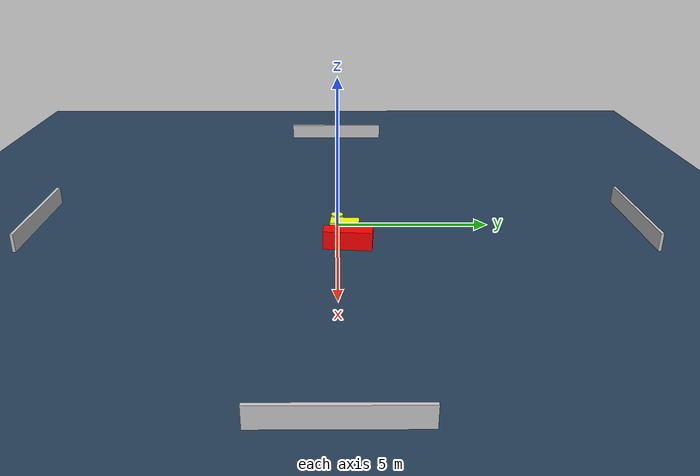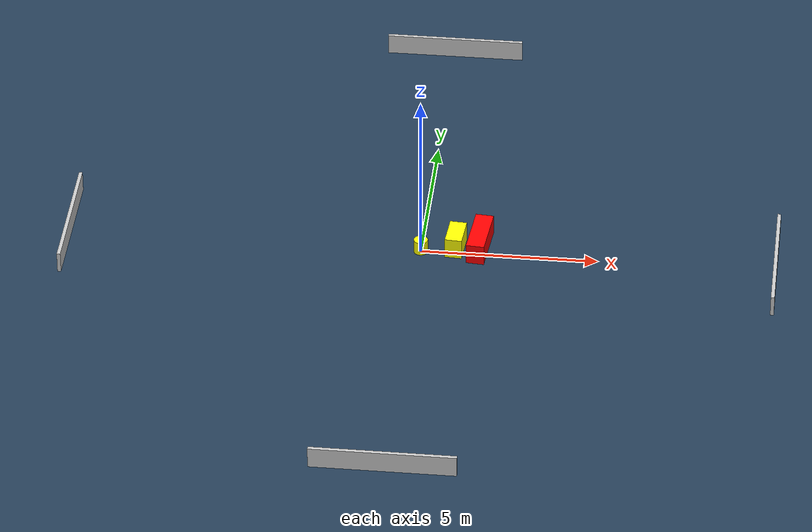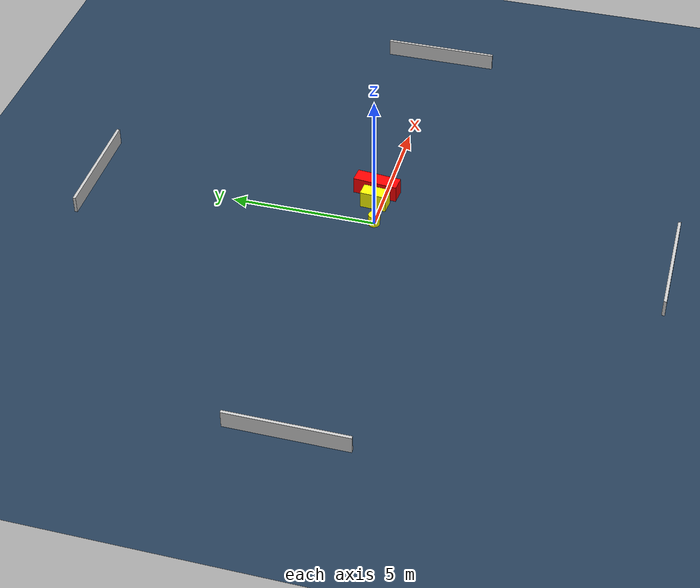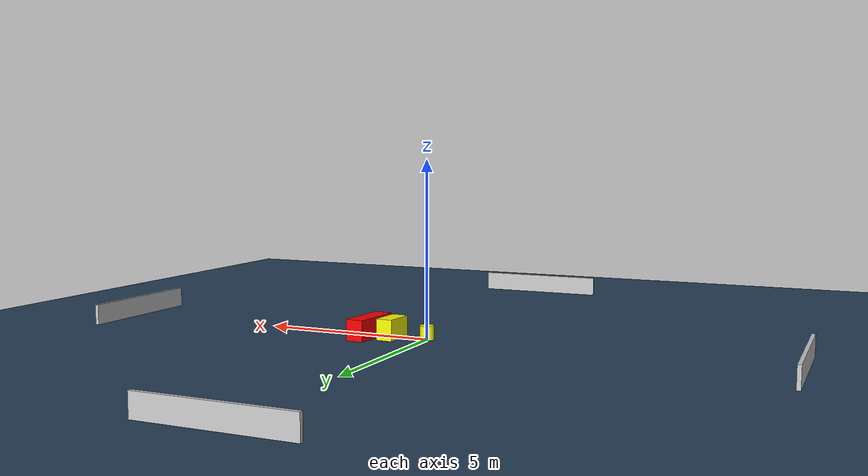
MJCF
<?xml version="1.0" ?>
<mujoco model="generated_environment">
  <option timestep="0.01" integrator="RK4" cone="elliptic"/>
  <default>
    <geom density="1"/>
  </default>
  <asset>
    <texture builtin="gradient" height="3072" name="skybox" rgb1="0.3 0.5 0.7" rgb2="0 0 0" type="skybox" width="512"/>
    <texture builtin="checker" height="300" name="groundplane" rgb1="0.2 0.3 0.4" rgb2="0.1 0.2 0.3" type="2d" width="300"/>
    <material name="groundplane" reflectance="0.2" texrepeat="5 5" texture="groundplane"/>
  </asset>
  <worldbody>
    <light dir="0 0 -1" directional="true" pos="0 0 1.5"/>
    <geom condim="3" friction="0.5 0.005 0.001" material="groundplane" name="floor" pos="0 0 0" size="0 0 0.05" type="plane"/>
    <body name="walls">
      <geom name="wall_1" condim="4" pos="-10.0 0.0 0.3" rgba="0.800000011920929 0.800000011920929 0.800000011920929 1.0" size="0.05 2.0 0.3" type="box"/>
      <geom name="wall_2" condim="4" pos="10.0 0.0 0.3" rgba="0.800000011920929 0.800000011920929 0.800000011920929 1.0" size="0.05 2.0 0.3" type="box"/>
      <geom name="wall_3" condim="4" pos="0.0 -10.0 0.3" rgba="0.800000011920929 0.800000011920929 0.800000011920929 1.0" size="2.0 0.05 0.3" type="box"/>
      <geom name="wall_4" condim="4" pos="0.0 10.0 0.3" rgba="0.800000011920929 0.800000011920929 0.800000011920929 1.0" size="2.0 0.05 0.3" type="box"/>
    </body>
    <body name="robot">
      <joint name="joint_x" type="slide" pos="0 0 0" axis="1 0 0"/>
      <joint name="joint_y" type="slide" pos="0 0 0" axis="0 1 0"/>
      <geom name="robot" type="cylinder" pos="0.0 0.0 0.2" size="0.2 0.2 0.0" mass="5.0" friction="1.0 0.005 0.0001" condim="4" rgba="1.0 1.0 0.0 1.0"/>
    </body>
    <body name="obstacle_1_movable">
      <geom name="obstacle_1_movable" condim="4" pos="0.9693820259411288 0.2329508188939921 0.3" euler="0 0 175.83092638331982" friction="0.0 0.005 0.001" rgba="1.0 1.0 0.0 1.0" size="0.23964562704450648 0.45793394400066667 0.3" type="box" mass="0.1"/>
      <joint type="free"/>
    </body>
    <body name="obstacle_2_static">
      <geom name="obstacle_2_static" condim="4" pos="1.6397779068726877 0.3288530084439861 0.3" euler="0 0 354.852527317066" friction="0.0 0.005 0.001" rgba="1.0 0.0 0.0 1.0" size="0.2563695712833281 0.7718947344363936 0.3" type="box"/>
    </body>
  </worldbody>
  <actuator>
    <motor name="actuator_x" joint="joint_x" gear="1" ctrlrange="-1 1"/>
    <motor name="actuator_y" joint="joint_y" gear="1" ctrlrange="-1 1"/>
  </actuator>
</mujoco>
